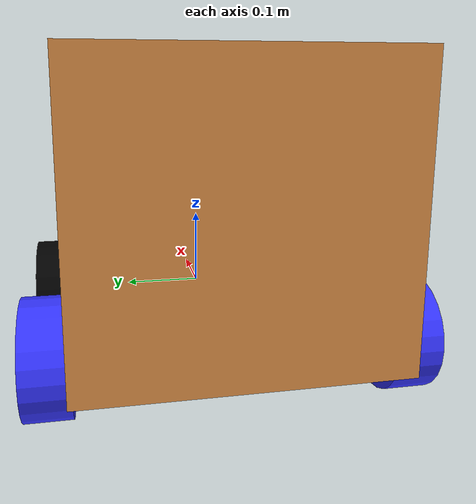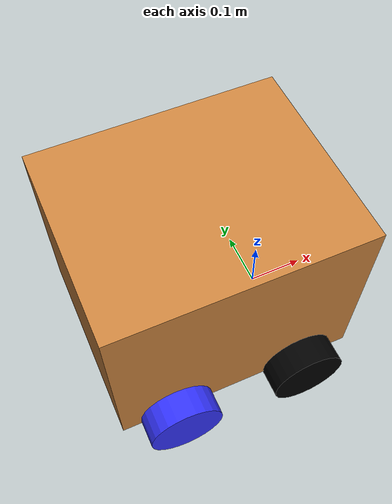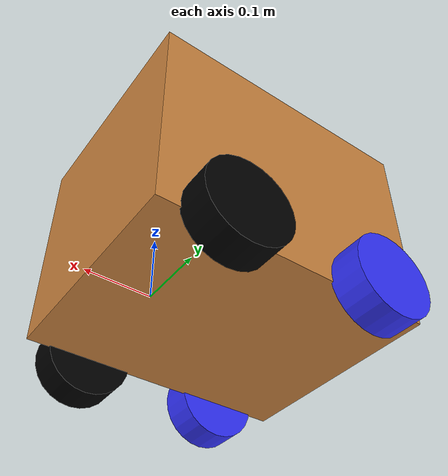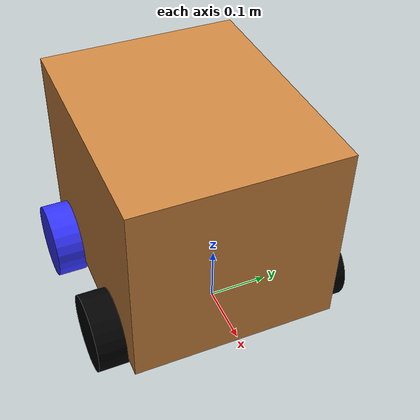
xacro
<?xml version="1.0" ?>
<robot name='robot' xmlns:xacro="http://ros.org/wiki/xacro">

    <!-- Подключение файла конфигурации для взаимодействия с симулятором Gazebo -->
    <xacro:include filename="$(find robot_description)/urdf/gazebo.urdf.xacro" />
    <!-- Дополнительные файлы, например, для описания лидара или камеры, могут быть подключены здесь -->
    <!--xacro:include filename="$(find robot_description)/urdf/lidar.urdf.xacro" /-->
    <!--xacro:include filename="$(find robot_description)/urdf/depth.urdf.xacro" /-->

    <!-- Определение свойств шасси и колес для использования в модели -->
    <xacro:property name="chassis_length" value="0.435"/> <!-- Длина шасси -->
    <xacro:property name="chassis_width" value="0.355"/> <!-- Ширина шасси -->
    <xacro:property name="chassis_height" value="0.335"/> <!-- Высота шасси -->
    <xacro:property name="wheel_radius" value="0.066"/> <!-- Радиус колес -->
    <xacro:property name="wheel_thickness" value="0.052"/> <!-- Толщина колес -->
    <xacro:property name="wheel_mass" value="0.05"/> <!-- Масса колес -->

    <xacro:property name="wheel_offset_x" value="0.335"/> <!-- Смещение колес по оси X -->
    <xacro:property name="wheel_offset_y" value="0.2"/> <!-- Смещение колес по оси Y -->
    <xacro:property name="wheel_offset_z" value="0.01"/> <!-- Смещение колес по оси Z -->

    <xacro:property name="back_wheel_offset_x" value="-0.235"/> <!-- Смещение колес по оси X -->
    <xacro:property name="back_wheel_offset_y" value="0.2"/> <!-- Смещение колес по оси Y -->
    <xacro:property name="back_wheel_offset_z" value="0.01"/> <!-- Смещение колес по оси Z -->

    <xacro:property name="mass" value="1.0"/> <!-- Масса шасси -->

    <!-- Определение материалов для визуализации -->
    <material name="white">
        <color rgba="1 1 1 1" /> <!-- Белый цвет -->
    </material>

    <material name="orange">
        <color rgba="1 0.3 0.1 1"/> <!-- Оранжевый цвет -->
    </material>

    <material name="blue">
        <color rgba="0.2 0.2 1 1"/> <!-- Синий цвет -->
    </material>

    <material name="black">
        <color rgba="0 0 0 1"/> <!-- Черный цвет -->
    </material>

    <material name="red">
        <color rgba="1 0 0 1"/> <!-- Красный цвет -->
    </material>

    <material name="light_brown">
        <color rgba="0.8 0.52 0.25 1"/> <!-- Светло-коричневый цвет -->
    </material>

    <!-- Описание базового звена -->
    <link name="base_link">
    </link>

    <!-- Определение фиктивного звена base_footprint -->
    <link name="base_footprint">
    </link>

    <!-- Фиксированное соединение между base_link и base_footprint -->
    <joint name="base_footprint_joint" type="fixed">
        <parent link="base_link"/>
        <child link="base_footprint"/>
        <origin xyz="0 0 -0.138" rpy="0 0 0"/> <!-- Смещение по оси Z -->
    </joint>

    <!-- Фиксированное соединение между base_link и шасси -->
    <joint name="chassis_joint" type="fixed">
        <parent link="base_link"/>
        <child link="chassis"/>
        <origin xyz="${-wheel_offset_x} 0 ${-wheel_offset_z}"/> <!-- Смещение по осям X и Z -->
    </joint>

    <!-- Описание шасси -->
    <link name='chassis'>
        <inertial>
            <origin xyz="${chassis_length/2} 0 ${chassis_height/2}" rpy="0 0 0"/> <!-- Центр масс -->
            <mass value="${mass}" /> <!-- Масса -->
            <inertia ixx="${(1/12) * mass * (chassis_width*chassis_width+chassis_height*chassis_height)}" ixy="0.0" ixz="0.0"
                     iyy="${(1/12) * mass * (chassis_length*chassis_length+chassis_height*chassis_height)}" iyz="0.0"
                     izz="${(1/12) * mass * (chassis_length*chassis_length+chassis_width*chassis_width)}" /> <!-- Момент инерции -->
        </inertial>
        <visual>
            <origin xyz="${chassis_length/2} 0 ${chassis_height/2}"/> <!-- Смещение для визуализации -->
            <geometry>
                <box size="${chassis_length} ${chassis_width} ${chassis_height}"/> <!-- Форма шасси -->
            </geometry>
            <material name="light_brown"/> <!-- Материал для визуализации -->
        </visual>
        <collision>
            <origin xyz="${chassis_length/2} 0 ${chassis_height/2}"/> <!-- Смещение для столкновений -->
            <geometry>
                <box size="${chassis_length} ${chassis_width} ${chassis_height}"/> <!-- Геометрия для столкновений -->
            </geometry>
        </collision>
    </link>

    <!-- Настройки для симуляции шасси в Gazebo -->
    <gazebo reference="chassis">
        <material>Gazebo/Orange</material>
    </gazebo>

    <!-- Описание соединения для левого колеса -->
    <joint name="left_wheel_joint" type="continuous">
        <parent link="base_link"/>
        <child link="left_wheel"/>
        <origin xyz="0 ${wheel_offset_y} 0" rpy="-${pi/2} 0 0" /> <!-- Смещение и ориентация -->
        <axis xyz="0 0 1"/> <!-- Ось вращения -->
    </joint>

    <!-- Описание левого колеса -->
    <link name="left_wheel">
        <visual>
            <geometry>
                <cylinder radius="${wheel_radius}" length="${wheel_thickness}"/> <!-- Геометрия для визуализации колеса в форме цилиндра -->
            </geometry>
            <material name="black"/> <!-- Материал для визуализации -->
        </visual>
        <collision>
            <geometry>
                <sphere radius="${wheel_radius}"/> <!-- Геометрия для обнаружения столкновений, в данном случае сфера -->
            </geometry>
        </collision>
        <inertial>
            <origin xyz="0 0 0" rpy="0 0 0"/> <!-- Центр масс колеса -->
            <mass value="${wheel_mass}" /> <!-- Масса колеса -->
            <inertia ixx="${(1/12) * wheel_mass * (3*wheel_radius*wheel_radius + wheel_thickness*wheel_thickness)}" ixy="0.0" ixz="0.0"
                     iyy="${(1/12) * wheel_mass * (3*wheel_radius*wheel_radius + wheel_thickness*wheel_thickness)}" iyz="0.0"
                     izz="${(1/2) * wheel_mass * (wheel_radius*wheel_radius)}" /> <!-- Моменты инерции -->
        </inertial>
    </link>

    <!-- Настройки для визуализации левого колеса в Gazebo -->
    <gazebo reference="left_wheel">
        <material>Gazebo/Black</material>
    </gazebo>

    <!-- Описание соединения для правого колеса -->
    <joint name="right_wheel_joint" type="continuous">
        <parent link="base_link"/> <!-- Родительское звено -->
        <child link="right_wheel"/> <!-- Дочернее звено -->
        <origin xyz="0 ${-wheel_offset_y} 0" rpy="${pi/2} 0 0" /> <!-- Смещение и ориентация -->
        <axis xyz="0 0 -1"/> <!-- Ось вращения колеса -->
    </joint>

    <!-- Описание правого колеса -->
    <link name="right_wheel">
        <visual>
            <geometry>
                <cylinder radius="${wheel_radius}" length="${wheel_thickness}"/> <!-- Геометрия колеса в форме цилиндра -->
            </geometry>
            <material name="black"/> <!-- Материал для визуализации -->
        </visual>
        <collision>
            <geometry>
                <sphere radius="${wheel_radius}"/> <!-- Геометрия столкновений, сфера -->
            </geometry>
        </collision>
        <inertial>
            <origin xyz="0 0 0" rpy="0 0 0"/> <!-- Центр масс колеса -->
            <mass value="${wheel_mass}" /> <!-- Масса колеса -->
            <inertia ixx="${(1/12) * wheel_mass * (3*wheel_radius*wheel_radius + wheel_thickness*wheel_thickness)}" ixy="0.0" ixz="0.0"
                     iyy="${(1/12) * wheel_mass * (3*wheel_radius*wheel_radius + wheel_thickness*wheel_thickness)}" iyz="0.0"
                     izz="${(1/2) * wheel_mass * (wheel_radius*wheel_radius)}" /> <!-- Моменты инерции -->
        </inertial>
    </link>

    <!-- Настройки для визуализации правого колеса в Gazebo -->
    <gazebo reference="right_wheel">
        <material>Gazebo/Black</material>
    </gazebo>

        <!-- Описание соединения для заднего левого колеса -->
    <joint name="back_left_wheel_joint" type="continuous">
        <parent link="base_link"/> <!-- Родительское звено -->
        <child link="back_left_wheel"/> <!-- Дочернее звено -->
        <origin xyz="${back_wheel_offset_x} ${wheel_offset_y} 0" rpy="${pi/2} 0 0" /> <!-- Смещение и ориентация -->
        <axis xyz="0 0 -1"/> <!-- Ось вращения колеса -->
    </joint>

    <!-- Описание заднего левого колеса -->
    <link name="back_left_wheel">
        <visual>
            <geometry>
                <cylinder radius="${wheel_radius}" length="${wheel_thickness}"/> <!-- Геометрия колеса в форме цилиндра -->
            </geometry>
            <material name="blue"/> <!-- Материал для визуализации -->
        </visual>
        <collision>
            <geometry>
                <sphere radius="${wheel_radius}"/> <!-- Геометрия столкновений, сфера -->
            </geometry>
        </collision>
        <inertial>
            <origin xyz="0 0 0" rpy="0 0 0"/> <!-- Центр масс колеса -->
            <mass value="${wheel_mass}" /> <!-- Масса колеса -->
            <inertia ixx="${(1/12) * wheel_mass * (3*wheel_radius*wheel_radius + wheel_thickness*wheel_thickness)}" ixy="0.0" ixz="0.0"
                     iyy="${(1/12) * wheel_mass * (3*wheel_radius*wheel_radius + wheel_thickness*wheel_thickness)}" iyz="0.0"
                     izz="${(1/2) * wheel_mass * (wheel_radius*wheel_radius)}" /> <!-- Моменты инерции -->
        </inertial>
    </link>

    <!-- Настройки для визуализации заднего левого колеса в Gazebo -->
    <gazebo reference="back_left_wheel">
        <material>Gazebo/Blue</material>
    </gazebo>

    <!-- Описание соединения для заднего правого колеса -->
    <joint name="back_right_wheel_joint" type="continuous">
        <parent link="base_link"/> <!-- Родительское звено -->
        <child link="back_right_wheel"/> <!-- Дочернее звено -->
        <origin xyz="${back_wheel_offset_x} ${-wheel_offset_y} 0" rpy="${pi/2} 0 0" /> <!-- Смещение и ориентация -->
        <axis xyz="0 0 -1"/> <!-- Ось вращения колеса -->
    </joint>

    <!-- Описание заднего правого колеса -->
    <link name="back_right_wheel">
        <visual>
            <geometry>
                <cylinder radius="${wheel_radius}" length="${wheel_thickness}"/> <!-- Геометрия колеса в форме цилиндра -->
            </geometry>
            <material name="blue"/> <!-- Материал для визуализации -->
        </visual>
        <collision>
            <geometry>
                <sphere radius="${wheel_radius}"/> <!-- Геометрия столкновений, сфера -->
            </geometry>
        </collision>
        <inertial>
            <origin xyz="0 0 0" rpy="0 0 0"/> <!-- Центр масс колеса -->
            <mass value="${wheel_mass}" /> <!-- Масса колеса -->
            <inertia ixx="${(1/12) * wheel_mass * (3*wheel_radius*wheel_radius + wheel_thickness*wheel_thickness)}" ixy="0.0" ixz="0.0"
                     iyy="${(1/12) * wheel_mass * (3*wheel_radius*wheel_radius + wheel_thickness*wheel_thickness)}" iyz="0.0"
                     izz="${(1/2) * wheel_mass * (wheel_radius*wheel_radius)}" /> <!-- Моменты инерции -->
        </inertial>
    </link>

    <!-- Настройки для визуализации заднего правого колеса в Gazebo -->
    <gazebo reference="back_right_wheel">
        <material>Gazebo/Blue</material>
    </gazebo>

</robot>
